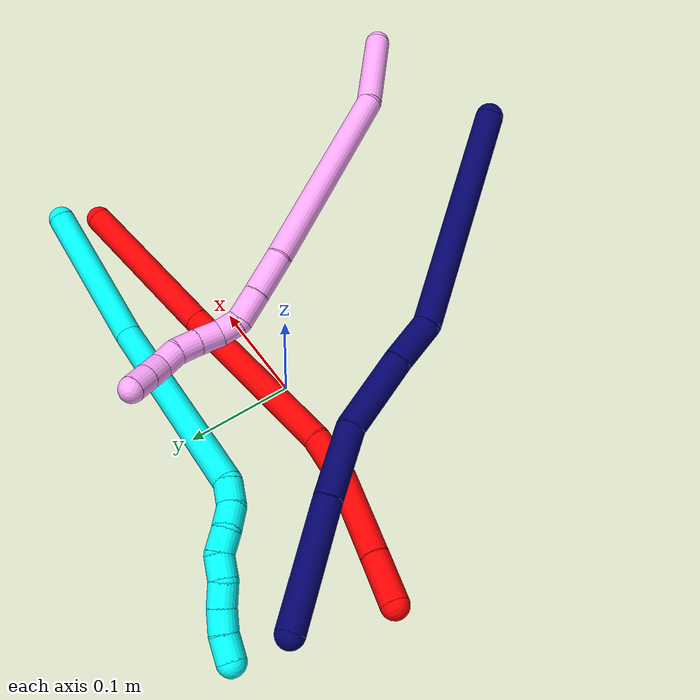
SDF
<sdf version="1.7">
 <world name="default">
  <model name="2">
   <static>0</static>
   <link name="2">
    <collision name="collision-cylinder-e_1_1_4">
     <pose>-0.073983 0.004055 0.030953 -0.130257 -1.17151 0.086484</pose>
     <geometry><cylinder><radius>0.0125</radius><length>0.160598</length></cylinder></geometry>
     <surface>
      <friction><ode><mu>1.16</mu><mu2>1.16</mu2><slip1>0</slip1><slip2>0</slip2></ode></friction>
      <contact><ode><kp>1e+06</kp><kd>1</kd><max_vel>0</max_vel><min_depth>0.001</min_depth></ode></contact>
     </surface>
    </collision>
    <visual name="visual-cylinder-e_1_1_4">
     <pose>-0.073983 0.004055 0.030953 -0.130257 -1.17151 0.086484</pose>
     <geometry><cylinder><radius>0.0125</radius><length>0.160598</length></cylinder></geometry>
     <material><ambient>1 0 0 1</ambient></material>
    </visual>
    <collision name="collision-cylinder-e_2_4_5">
     <pose>-0.226274 0.018034 0.098708 -0.26341 -1.11781 0.165324</pose>
     <geometry><cylinder><radius>0.0125</radius><length>0.174186</length></cylinder></geometry>
     <surface>
      <friction><ode><mu>1.16</mu><mu2>1.16</mu2><slip1>0</slip1><slip2>0</slip2></ode></friction>
      <contact><ode><kp>1e+06</kp><kd>1</kd><max_vel>0</max_vel><min_depth>0.001</min_depth></ode></contact>
     </surface>
    </collision>
    <visual name="visual-cylinder-e_2_4_5">
     <pose>-0.226274 0.018034 0.098708 -0.26341 -1.11781 0.165324</pose>
     <geometry><cylinder><radius>0.0125</radius><length>0.174186</length></cylinder></geometry>
     <material><ambient>1 0 0 1</ambient></material>
    </visual>
    <collision name="collision-cylinder-e_3_5_6">
     <pose>-0.325542 0.031269 0.140704 -0.567394 -1.28497 0.42968</pose>
     <geometry><cylinder><radius>0.0125</radius><length>0.043692</length></cylinder></geometry>
     <surface>
      <friction><ode><mu>1.16</mu><mu2>1.16</mu2><slip1>0</slip1><slip2>0</slip2></ode></friction>
      <contact><ode><kp>1e+06</kp><kd>1</kd><max_vel>0</max_vel><min_depth>0.001</min_depth></ode></contact>
     </surface>
    </collision>
    <visual name="visual-cylinder-e_3_5_6">
     <pose>-0.325542 0.031269 0.140704 -0.567394 -1.28497 0.42968</pose>
     <geometry><cylinder><radius>0.0125</radius><length>0.043692</length></cylinder></geometry>
     <material><ambient>1 0 0 1</ambient></material>
    </visual>
    <collision name="collision-cylinder-e_4_6_7">
     <pose>-0.382851 0.047138 0.150398 -1.22678 -1.21905 0.913696</pose>
     <geometry><cylinder><radius>0.0125</radius><length>0.077439</length></cylinder></geometry>
     <surface>
      <friction><ode><mu>1.16</mu><mu2>1.16</mu2><slip1>0</slip1><slip2>0</slip2></ode></friction>
      <contact><ode><kp>1e+06</kp><kd>1</kd><max_vel>0</max_vel><min_depth>0.001</min_depth></ode></contact>
     </surface>
    </collision>
    <visual name="visual-cylinder-e_4_6_7">
     <pose>-0.382851 0.047138 0.150398 -1.22678 -1.21905 0.913696</pose>
     <geometry><cylinder><radius>0.0125</radius><length>0.077439</length></cylinder></geometry>
     <material><ambient>1 0 0 1</ambient></material>
    </visual>
    <collision name="collision-cylinder-e_5_7_2">
     <pose>-0.440227 0.065959 0.157019 -1.2441 -1.26614 0.968708</pose>
     <geometry><cylinder><radius>0.0125</radius><length>0.044085</length></cylinder></geometry>
     <surface>
      <friction><ode><mu>1.16</mu><mu2>1.16</mu2><slip1>0</slip1><slip2>0</slip2></ode></friction>
      <contact><ode><kp>1e+06</kp><kd>1</kd><max_vel>0</max_vel><min_depth>0.001</min_depth></ode></contact>
     </surface>
    </collision>
    <visual name="visual-cylinder-e_5_7_2">
     <pose>-0.440227 0.065959 0.157019 -1.2441 -1.26614 0.968708</pose>
     <geometry><cylinder><radius>0.0125</radius><length>0.044085</length></cylinder></geometry>
     <material><ambient>1 0 0 1</ambient></material>
    </visual>
    <collision name="collision-sphere-2">
     <pose>-0.461255 0.072221 0.159141 0 -0 0</pose>
     <geometry><sphere><radius>0.0125</radius></sphere></geometry>
     <surface>
      <friction><ode><mu>1.16</mu><mu2>1.16</mu2><slip1>0</slip1><slip2>0</slip2></ode></friction>
      <contact><ode><kp>1e+06</kp><kd>1</kd><max_vel>0</max_vel><min_depth>0.001</min_depth></ode></contact>
     </surface>
    </collision>
    <visual name="visual-sphere-2">
     <pose>-0.461255 0.072221 0.159141 0 -0 0</pose>
     <geometry><sphere><radius>0.0125</radius></sphere></geometry>
     <material><ambient>1 0 0 1</ambient></material>
    </visual>
    <collision name="collision-sphere-7">
     <pose>-0.4192 0.059697 0.154897 0 -0 0</pose>
     <geometry><sphere><radius>0.0125</radius></sphere></geometry>
     <surface>
      <friction><ode><mu>1.16</mu><mu2>1.16</mu2><slip1>0</slip1><slip2>0</slip2></ode></friction>
      <contact><ode><kp>1e+06</kp><kd>1</kd><max_vel>0</max_vel><min_depth>0.001</min_depth></ode></contact>
     </surface>
    </collision>
    <visual name="visual-sphere-7">
     <pose>-0.4192 0.059697 0.154897 0 -0 0</pose>
     <geometry><sphere><radius>0.0125</radius></sphere></geometry>
     <material><ambient>1 0 0 1</ambient></material>
    </visual>
    <collision name="collision-sphere-6">
     <pose>-0.346502 0.03458 0.145899 0 -0 0</pose>
     <geometry><sphere><radius>0.0125</radius></sphere></geometry>
     <surface>
      <friction><ode><mu>1.16</mu><mu2>1.16</mu2><slip1>0</slip1><slip2>0</slip2></ode></friction>
      <contact><ode><kp>1e+06</kp><kd>1</kd><max_vel>0</max_vel><min_depth>0.001</min_depth></ode></contact>
     </surface>
    </collision>
    <visual name="visual-sphere-6">
     <pose>-0.346502 0.03458 0.145899 0 -0 0</pose>
     <geometry><sphere><radius>0.0125</radius></sphere></geometry>
     <material><ambient>1 0 0 1</ambient></material>
    </visual>
    <collision name="collision-sphere-5">
     <pose>-0.304583 0.027959 0.13551 0 -0 0</pose>
     <geometry><sphere><radius>0.0125</radius></sphere></geometry>
     <surface>
      <friction><ode><mu>1.16</mu><mu2>1.16</mu2><slip1>0</slip1><slip2>0</slip2></ode></friction>
      <contact><ode><kp>1e+06</kp><kd>1</kd><max_vel>0</max_vel><min_depth>0.001</min_depth></ode></contact>
     </surface>
    </collision>
    <visual name="visual-sphere-5">
     <pose>-0.304583 0.027959 0.13551 0 -0 0</pose>
     <geometry><sphere><radius>0.0125</radius></sphere></geometry>
     <material><ambient>1 0 0 1</ambient></material>
    </visual>
    <collision name="collision-sphere-1">
     <geometry><sphere><radius>0.0125</radius></sphere></geometry>
     <surface>
      <friction><ode><mu>1.16</mu><mu2>1.16</mu2><slip1>0</slip1><slip2>0</slip2></ode></friction>
      <contact><ode><kp>1e+06</kp><kd>1</kd><max_vel>0</max_vel><min_depth>0.001</min_depth></ode></contact>
     </surface>
    </collision>
    <visual name="visual-sphere-1">
     <geometry><sphere><radius>0.0125</radius></sphere></geometry>
     <material><ambient>1 0 0 1</ambient></material>
    </visual>
    <collision name="collision-sphere-4">
     <pose>-0.147965 0.00811 0.061906 0 -0 0</pose>
     <geometry><sphere><radius>0.0125</radius></sphere></geometry>
     <surface>
      <friction><ode><mu>1.16</mu><mu2>1.16</mu2><slip1>0</slip1><slip2>0</slip2></ode></friction>
      <contact><ode><kp>1e+06</kp><kd>1</kd><max_vel>0</max_vel><min_depth>0.001</min_depth></ode></contact>
     </surface>
    </collision>
    <visual name="visual-sphere-4">
     <pose>-0.147965 0.00811 0.061906 0 -0 0</pose>
     <geometry><sphere><radius>0.0125</radius></sphere></geometry>
     <material><ambient>1 0 0 1</ambient></material>
    </visual>
    <inertial>
     <pose>-0.229148 0.023434 0.093762 0 -0 0</pose>
     <mass>0.5</mass>
     <inertia>
      <ixx>0.000364</ixx>
      <ixy>0</ixy>
      <ixz>0</ixz>
      <iyy>0.000913</iyy>
      <iyz>0</iyz>
      <izz>0.000708</izz>
     </inertia>
    </inertial>
   </link>
   <pose>0.264307 0.05307 0.020356 0.99081 -0.326242 -0.174027</pose>
  </model>
  <model name="3">
   <static>0</static>
   <link name="3">
    <collision name="collision-cylinder-e_1_1_4">
     <pose>-0.065872 0.022811 -0.021089 -2.31697 -1.13012 1.93382</pose>
     <geometry><cylinder><radius>0.0125</radius><length>0.14566</length></cylinder></geometry>
     <surface>
      <friction><ode><mu>1.16</mu><mu2>1.16</mu2><slip1>0</slip1><slip2>0</slip2></ode></friction>
      <contact><ode><kp>1e+06</kp><kd>1</kd><max_vel>0</max_vel><min_depth>0.001</min_depth></ode></contact>
     </surface>
    </collision>
    <visual name="visual-cylinder-e_1_1_4">
     <pose>-0.065872 0.022811 -0.021089 -2.31697 -1.13012 1.93382</pose>
     <geometry><cylinder><radius>0.0125</radius><length>0.14566</length></cylinder></geometry>
     <material><ambient>0.003922 1 0.996078 1</ambient></material>
    </visual>
    <collision name="collision-cylinder-e_2_4_5">
     <pose>-0.211705 0.063844 -0.105534 -2.86156 -0.881321 2.56077</pose>
     <geometry><cylinder><radius>0.0125</radius><length>0.207266</length></cylinder></geometry>
     <surface>
      <friction><ode><mu>1.16</mu><mu2>1.16</mu2><slip1>0</slip1><slip2>0</slip2></ode></friction>
      <contact><ode><kp>1e+06</kp><kd>1</kd><max_vel>0</max_vel><min_depth>0.001</min_depth></ode></contact>
     </surface>
    </collision>
    <visual name="visual-cylinder-e_2_4_5">
     <pose>-0.211705 0.063844 -0.105534 -2.86156 -0.881321 2.56077</pose>
     <geometry><cylinder><radius>0.0125</radius><length>0.207266</length></cylinder></geometry>
     <material><ambient>0.003922 1 0.996078 1</ambient></material>
    </visual>
    <collision name="collision-cylinder-e_3_5_6">
     <pose>-0.301978 0.081331 -0.172313 2.93065 -1.24353 -2.84823</pose>
     <geometry><cylinder><radius>0.0125</radius><length>0.02178</length></cylinder></geometry>
     <surface>
      <friction><ode><mu>1.16</mu><mu2>1.16</mu2><slip1>0</slip1><slip2>0</slip2></ode></friction>
      <contact><ode><kp>1e+06</kp><kd>1</kd><max_vel>0</max_vel><min_depth>0.001</min_depth></ode></contact>
     </surface>
    </collision>
    <visual name="visual-cylinder-e_3_5_6">
     <pose>-0.301978 0.081331 -0.172313 2.93065 -1.24353 -2.84823</pose>
     <geometry><cylinder><radius>0.0125</radius><length>0.02178</length></cylinder></geometry>
     <material><ambient>0.003922 1 0.996078 1</ambient></material>
    </visual>
    <collision name="collision-cylinder-e_4_6_7">
     <pose>-0.321855 0.076083 -0.178778 2.1637 -1.0533 -1.65945</pose>
     <geometry><cylinder><radius>0.0125</radius><length>0.022011</length></cylinder></geometry>
     <surface>
      <friction><ode><mu>1.16</mu><mu2>1.16</mu2><slip1>0</slip1><slip2>0</slip2></ode></friction>
      <contact><ode><kp>1e+06</kp><kd>1</kd><max_vel>0</max_vel><min_depth>0.001</min_depth></ode></contact>
     </surface>
    </collision>
    <visual name="visual-cylinder-e_4_6_7">
     <pose>-0.321855 0.076083 -0.178778 2.1637 -1.0533 -1.65945</pose>
     <geometry><cylinder><radius>0.0125</radius><length>0.022011</length></cylinder></geometry>
     <material><ambient>0.003922 1 0.996078 1</ambient></material>
    </visual>
    <collision name="collision-cylinder-e_5_7_8">
     <pose>-0.340673 0.067451 -0.181784 1.56202 -1.15224 -1.14423</pose>
     <geometry><cylinder><radius>0.0125</radius><length>0.020257</length></cylinder></geometry>
     <surface>
      <friction><ode><mu>1.16</mu><mu2>1.16</mu2><slip1>0</slip1><slip2>0</slip2></ode></friction>
      <contact><ode><kp>1e+06</kp><kd>1</kd><max_vel>0</max_vel><min_depth>0.001</min_depth></ode></contact>
     </surface>
    </collision>
    <visual name="visual-cylinder-e_5_7_8">
     <pose>-0.340673 0.067451 -0.181784 1.56202 -1.15224 -1.14423</pose>
     <geometry><cylinder><radius>0.0125</radius><length>0.020257</length></cylinder></geometry>
     <material><ambient>0.003922 1 0.996078 1</ambient></material>
    </visual>
    <collision name="collision-cylinder-e_6_8_9">
     <pose>-0.36011 0.063535 -0.183057 -2.99026 -1.44153 2.96941</pose>
     <geometry><cylinder><radius>0.0125</radius><length>0.020538</length></cylinder></geometry>
     <surface>
      <friction><ode><mu>1.16</mu><mu2>1.16</mu2><slip1>0</slip1><slip2>0</slip2></ode></friction>
      <contact><ode><kp>1e+06</kp><kd>1</kd><max_vel>0</max_vel><min_depth>0.001</min_depth></ode></contact>
     </surface>
    </collision>
    <visual name="visual-cylinder-e_6_8_9">
     <pose>-0.36011 0.063535 -0.183057 -2.99026 -1.44153 2.96941</pose>
     <geometry><cylinder><radius>0.0125</radius><length>0.020538</length></cylinder></geometry>
     <material><ambient>0.003922 1 0.996078 1</ambient></material>
    </visual>
    <collision name="collision-cylinder-e_7_9_10">
     <pose>-0.380418 0.062607 -0.182379 0.516367 -1.34896 -0.416183</pose>
     <geometry><cylinder><radius>0.0125</radius><length>0.020758</length></cylinder></geometry>
     <surface>
      <friction><ode><mu>1.16</mu><mu2>1.16</mu2><slip1>0</slip1><slip2>0</slip2></ode></friction>
      <contact><ode><kp>1e+06</kp><kd>1</kd><max_vel>0</max_vel><min_depth>0.001</min_depth></ode></contact>
     </surface>
    </collision>
    <visual name="visual-cylinder-e_7_9_10">
     <pose>-0.380418 0.062607 -0.182379 0.516367 -1.34896 -0.416183</pose>
     <geometry><cylinder><radius>0.0125</radius><length>0.020758</length></cylinder></geometry>
     <material><ambient>0.003922 1 0.996078 1</ambient></material>
    </visual>
    <collision name="collision-cylinder-e_8_10_11">
     <pose>-0.400627 0.061244 -0.18001 0.549982 -1.52619 -0.527102</pose>
     <geometry><cylinder><radius>0.0125</radius><length>0.020189</length></cylinder></geometry>
     <surface>
      <friction><ode><mu>1.16</mu><mu2>1.16</mu2><slip1>0</slip1><slip2>0</slip2></ode></friction>
      <contact><ode><kp>1e+06</kp><kd>1</kd><max_vel>0</max_vel><min_depth>0.001</min_depth></ode></contact>
     </surface>
    </collision>
    <visual name="visual-cylinder-e_8_10_11">
     <pose>-0.400627 0.061244 -0.18001 0.549982 -1.52619 -0.527102</pose>
     <geometry><cylinder><radius>0.0125</radius><length>0.020189</length></cylinder></geometry>
     <material><ambient>0.003922 1 0.996078 1</ambient></material>
    </visual>
    <collision name="collision-cylinder-e_9_11_2">
     <pose>-0.421316 0.062739 -0.180375 -1.97948 -1.39486 1.81213</pose>
     <geometry><cylinder><radius>0.0125</radius><length>0.021541</length></cylinder></geometry>
     <surface>
      <friction><ode><mu>1.16</mu><mu2>1.16</mu2><slip1>0</slip1><slip2>0</slip2></ode></friction>
      <contact><ode><kp>1e+06</kp><kd>1</kd><max_vel>0</max_vel><min_depth>0.001</min_depth></ode></contact>
     </surface>
    </collision>
    <visual name="visual-cylinder-e_9_11_2">
     <pose>-0.421316 0.062739 -0.180375 -1.97948 -1.39486 1.81213</pose>
     <geometry><cylinder><radius>0.0125</radius><length>0.021541</length></cylinder></geometry>
     <material><ambient>0.003922 1 0.996078 1</ambient></material>
    </visual>
    <collision name="collision-sphere-2">
     <pose>-0.431921 0.064468 -0.181124 0 -0 0</pose>
     <geometry><sphere><radius>0.0125</radius></sphere></geometry>
     <surface>
      <friction><ode><mu>1.16</mu><mu2>1.16</mu2><slip1>0</slip1><slip2>0</slip2></ode></friction>
      <contact><ode><kp>1e+06</kp><kd>1</kd><max_vel>0</max_vel><min_depth>0.001</min_depth></ode></contact>
     </surface>
    </collision>
    <visual name="visual-sphere-2">
     <pose>-0.431921 0.064468 -0.181124 0 -0 0</pose>
     <geometry><sphere><radius>0.0125</radius></sphere></geometry>
     <material><ambient>0.003922 1 0.996078 1</ambient></material>
    </visual>
    <collision name="collision-sphere-11">
     <pose>-0.410712 0.061009 -0.179626 0 -0 0</pose>
     <geometry><sphere><radius>0.0125</radius></sphere></geometry>
     <surface>
      <friction><ode><mu>1.16</mu><mu2>1.16</mu2><slip1>0</slip1><slip2>0</slip2></ode></friction>
      <contact><ode><kp>1e+06</kp><kd>1</kd><max_vel>0</max_vel><min_depth>0.001</min_depth></ode></contact>
     </surface>
    </collision>
    <visual name="visual-sphere-11">
     <pose>-0.410712 0.061009 -0.179626 0 -0 0</pose>
     <geometry><sphere><radius>0.0125</radius></sphere></geometry>
     <material><ambient>0.003922 1 0.996078 1</ambient></material>
    </visual>
    <collision name="collision-sphere-10">
     <pose>-0.390543 0.061479 -0.180394 0 -0 0</pose>
     <geometry><sphere><radius>0.0125</radius></sphere></geometry>
     <surface>
      <friction><ode><mu>1.16</mu><mu2>1.16</mu2><slip1>0</slip1><slip2>0</slip2></ode></friction>
      <contact><ode><kp>1e+06</kp><kd>1</kd><max_vel>0</max_vel><min_depth>0.001</min_depth></ode></contact>
     </surface>
    </collision>
    <visual name="visual-sphere-10">
     <pose>-0.390543 0.061479 -0.180394 0 -0 0</pose>
     <geometry><sphere><radius>0.0125</radius></sphere></geometry>
     <material><ambient>0.003922 1 0.996078 1</ambient></material>
    </visual>
    <collision name="collision-sphere-9">
     <pose>-0.370294 0.063734 -0.184365 0 -0 0</pose>
     <geometry><sphere><radius>0.0125</radius></sphere></geometry>
     <surface>
      <friction><ode><mu>1.16</mu><mu2>1.16</mu2><slip1>0</slip1><slip2>0</slip2></ode></friction>
      <contact><ode><kp>1e+06</kp><kd>1</kd><max_vel>0</max_vel><min_depth>0.001</min_depth></ode></contact>
     </surface>
    </collision>
    <visual name="visual-sphere-9">
     <pose>-0.370294 0.063734 -0.184365 0 -0 0</pose>
     <geometry><sphere><radius>0.0125</radius></sphere></geometry>
     <material><ambient>0.003922 1 0.996078 1</ambient></material>
    </visual>
    <collision name="collision-sphere-4">
     <pose>-0.131744 0.045623 -0.042177 0 -0 0</pose>
     <geometry><sphere><radius>0.0125</radius></sphere></geometry>
     <surface>
      <friction><ode><mu>1.16</mu><mu2>1.16</mu2><slip1>0</slip1><slip2>0</slip2></ode></friction>
      <contact><ode><kp>1e+06</kp><kd>1</kd><max_vel>0</max_vel><min_depth>0.001</min_depth></ode></contact>
     </surface>
    </collision>
    <visual name="visual-sphere-4">
     <pose>-0.131744 0.045623 -0.042177 0 -0 0</pose>
     <geometry><sphere><radius>0.0125</radius></sphere></geometry>
     <material><ambient>0.003922 1 0.996078 1</ambient></material>
    </visual>
    <collision name="collision-sphere-1">
     <geometry><sphere><radius>0.0125</radius></sphere></geometry>
     <surface>
      <friction><ode><mu>1.16</mu><mu2>1.16</mu2><slip1>0</slip1><slip2>0</slip2></ode></friction>
      <contact><ode><kp>1e+06</kp><kd>1</kd><max_vel>0</max_vel><min_depth>0.001</min_depth></ode></contact>
     </surface>
    </collision>
    <visual name="visual-sphere-1">
     <geometry><sphere><radius>0.0125</radius></sphere></geometry>
     <material><ambient>0.003922 1 0.996078 1</ambient></material>
    </visual>
    <collision name="collision-sphere-8">
     <pose>-0.349927 0.063335 -0.181748 0 -0 0</pose>
     <geometry><sphere><radius>0.0125</radius></sphere></geometry>
     <surface>
      <friction><ode><mu>1.16</mu><mu2>1.16</mu2><slip1>0</slip1><slip2>0</slip2></ode></friction>
      <contact><ode><kp>1e+06</kp><kd>1</kd><max_vel>0</max_vel><min_depth>0.001</min_depth></ode></contact>
     </surface>
    </collision>
    <visual name="visual-sphere-8">
     <pose>-0.349927 0.063335 -0.181748 0 -0 0</pose>
     <geometry><sphere><radius>0.0125</radius></sphere></geometry>
     <material><ambient>0.003922 1 0.996078 1</ambient></material>
    </visual>
    <collision name="collision-sphere-5">
     <pose>-0.291666 0.082064 -0.16889 0 -0 0</pose>
     <geometry><sphere><radius>0.0125</radius></sphere></geometry>
     <surface>
      <friction><ode><mu>1.16</mu><mu2>1.16</mu2><slip1>0</slip1><slip2>0</slip2></ode></friction>
      <contact><ode><kp>1e+06</kp><kd>1</kd><max_vel>0</max_vel><min_depth>0.001</min_depth></ode></contact>
     </surface>
    </collision>
    <visual name="visual-sphere-5">
     <pose>-0.291666 0.082064 -0.16889 0 -0 0</pose>
     <geometry><sphere><radius>0.0125</radius></sphere></geometry>
     <material><ambient>0.003922 1 0.996078 1</ambient></material>
    </visual>
    <collision name="collision-sphere-6">
     <pose>-0.312291 0.080598 -0.175736 0 -0 0</pose>
     <geometry><sphere><radius>0.0125</radius></sphere></geometry>
     <surface>
      <friction><ode><mu>1.16</mu><mu2>1.16</mu2><slip1>0</slip1><slip2>0</slip2></ode></friction>
      <contact><ode><kp>1e+06</kp><kd>1</kd><max_vel>0</max_vel><min_depth>0.001</min_depth></ode></contact>
     </surface>
    </collision>
    <visual name="visual-sphere-6">
     <pose>-0.312291 0.080598 -0.175736 0 -0 0</pose>
     <geometry><sphere><radius>0.0125</radius></sphere></geometry>
     <material><ambient>0.003922 1 0.996078 1</ambient></material>
    </visual>
    <collision name="collision-sphere-7">
     <pose>-0.331419 0.071568 -0.181821 0 -0 0</pose>
     <geometry><sphere><radius>0.0125</radius></sphere></geometry>
     <surface>
      <friction><ode><mu>1.16</mu><mu2>1.16</mu2><slip1>0</slip1><slip2>0</slip2></ode></friction>
      <contact><ode><kp>1e+06</kp><kd>1</kd><max_vel>0</max_vel><min_depth>0.001</min_depth></ode></contact>
     </surface>
    </collision>
    <visual name="visual-sphere-7">
     <pose>-0.331419 0.071568 -0.181821 0 -0 0</pose>
     <geometry><sphere><radius>0.0125</radius></sphere></geometry>
     <material><ambient>0.003922 1 0.996078 1</ambient></material>
    </visual>
    <inertial>
     <pose>-0.212986 0.05312 -0.102762 0 -0 0</pose>
     <mass>0.5</mass>
     <inertia>
      <ixx>-0.000107</ixx>
      <ixy>0</ixy>
      <ixz>0</ixz>
      <iyy>0.001298</iyy>
      <iyz>0</iyz>
      <izz>0.0006</izz>
     </inertia>
    </inertial>
   </link>
   <pose>0.267769 0.09005 0.039532 -2.79576 -0.39269 -0.449052</pose>
  </model>
  <model name="4">
   <static>0</static>
   <link name="4">
    <collision name="collision-cylinder-e_1_1_4">
     <pose>0.003246 0.00597 -0.046556 -3.01405 0.069043 -0.991526</pose>
     <geometry><cylinder><radius>0.0125</radius><length>0.094099</length></cylinder></geometry>
     <surface>
      <friction><ode><mu>1.16</mu><mu2>1.16</mu2><slip1>0</slip1><slip2>0</slip2></ode></friction>
      <contact><ode><kp>1e+06</kp><kd>1</kd><max_vel>0</max_vel><min_depth>0.001</min_depth></ode></contact>
     </surface>
    </collision>
    <visual name="visual-cylinder-e_1_1_4">
     <pose>0.003246 0.00597 -0.046556 -3.01405 0.069043 -0.991526</pose>
     <geometry><cylinder><radius>0.0125</radius><length>0.094099</length></cylinder></geometry>
     <material><ambient>1 0.65098 0.996078 1</ambient></material>
    </visual>
    <collision name="collision-cylinder-e_2_4_5">
     <pose>0.005171 0.057965 -0.184393 -2.67458 -0.012921 0.054313</pose>
     <geometry><cylinder><radius>0.0125</radius><length>0.20447</length></cylinder></geometry>
     <surface>
      <friction><ode><mu>1.16</mu><mu2>1.16</mu2><slip1>0</slip1><slip2>0</slip2></ode></friction>
      <contact><ode><kp>1e+06</kp><kd>1</kd><max_vel>0</max_vel><min_depth>0.001</min_depth></ode></contact>
     </surface>
    </collision>
    <visual name="visual-cylinder-e_2_4_5">
     <pose>0.005171 0.057965 -0.184393 -2.67458 -0.012921 0.054313</pose>
     <geometry><cylinder><radius>0.0125</radius><length>0.20447</length></cylinder></geometry>
     <material><ambient>1 0.65098 0.996078 1</ambient></material>
    </visual>
    <collision name="collision-cylinder-e_3_5_6">
     <pose>0.004865 0.115734 -0.293484 -2.55861 0.047566 -0.158233</pose>
     <geometry><cylinder><radius>0.0125</radius><length>0.042718</length></cylinder></geometry>
     <surface>
      <friction><ode><mu>1.16</mu><mu2>1.16</mu2><slip1>0</slip1><slip2>0</slip2></ode></friction>
      <contact><ode><kp>1e+06</kp><kd>1</kd><max_vel>0</max_vel><min_depth>0.001</min_depth></ode></contact>
     </surface>
    </collision>
    <visual name="visual-cylinder-e_3_5_6">
     <pose>0.004865 0.115734 -0.293484 -2.55861 0.047566 -0.158233</pose>
     <geometry><cylinder><radius>0.0125</radius><length>0.042718</length></cylinder></geometry>
     <material><ambient>1 0.65098 0.996078 1</ambient></material>
    </visual>
    <collision name="collision-cylinder-e_4_6_7">
     <pose>0.006755 0.136373 -0.32398 -2.53016 0.056382 -0.178219</pose>
     <geometry><cylinder><radius>0.0125</radius><length>0.031034</length></cylinder></geometry>
     <surface>
      <friction><ode><mu>1.16</mu><mu2>1.16</mu2><slip1>0</slip1><slip2>0</slip2></ode></friction>
      <contact><ode><kp>1e+06</kp><kd>1</kd><max_vel>0</max_vel><min_depth>0.001</min_depth></ode></contact>
     </surface>
    </collision>
    <visual name="visual-cylinder-e_4_6_7">
     <pose>0.006755 0.136373 -0.32398 -2.53016 0.056382 -0.178219</pose>
     <geometry><cylinder><radius>0.0125</radius><length>0.031034</length></cylinder></geometry>
     <material><ambient>1 0.65098 0.996078 1</ambient></material>
    </visual>
    <collision name="collision-cylinder-e_5_7_8">
     <pose>0.005393 0.154077 -0.341692 -2.08914 -0.217033 0.370806</pose>
     <geometry><cylinder><radius>0.0125</radius><length>0.020774</length></cylinder></geometry>
     <surface>
      <friction><ode><mu>1.16</mu><mu2>1.16</mu2><slip1>0</slip1><slip2>0</slip2></ode></friction>
      <contact><ode><kp>1e+06</kp><kd>1</kd><max_vel>0</max_vel><min_depth>0.001</min_depth></ode></contact>
     </surface>
    </collision>
    <visual name="visual-cylinder-e_5_7_8">
     <pose>0.005393 0.154077 -0.341692 -2.08914 -0.217033 0.370806</pose>
     <geometry><cylinder><radius>0.0125</radius><length>0.020774</length></cylinder></geometry>
     <material><ambient>1 0.65098 0.996078 1</ambient></material>
    </visual>
    <collision name="collision-cylinder-e_6_8_9">
     <pose>-0.00271 0.170329 -0.35369 -2.32373 -0.522028 1.10473</pose>
     <geometry><cylinder><radius>0.0125</radius><length>0.023529</length></cylinder></geometry>
     <surface>
      <friction><ode><mu>1.16</mu><mu2>1.16</mu2><slip1>0</slip1><slip2>0</slip2></ode></friction>
      <contact><ode><kp>1e+06</kp><kd>1</kd><max_vel>0</max_vel><min_depth>0.001</min_depth></ode></contact>
     </surface>
    </collision>
    <visual name="visual-cylinder-e_6_8_9">
     <pose>-0.00271 0.170329 -0.35369 -2.32373 -0.522028 1.10473</pose>
     <geometry><cylinder><radius>0.0125</radius><length>0.023529</length></cylinder></geometry>
     <material><ambient>1 0.65098 0.996078 1</ambient></material>
    </visual>
    <collision name="collision-cylinder-e_7_9_10">
     <pose>-0.013954 0.184129 -0.367864 -2.41822 -0.510282 1.20717</pose>
     <geometry><cylinder><radius>0.0125</radius><length>0.022019</length></cylinder></geometry>
     <surface>
      <friction><ode><mu>1.16</mu><mu2>1.16</mu2><slip1>0</slip1><slip2>0</slip2></ode></friction>
      <contact><ode><kp>1e+06</kp><kd>1</kd><max_vel>0</max_vel><min_depth>0.001</min_depth></ode></contact>
     </surface>
    </collision>
    <visual name="visual-cylinder-e_7_9_10">
     <pose>-0.013954 0.184129 -0.367864 -2.41822 -0.510282 1.20717</pose>
     <geometry><cylinder><radius>0.0125</radius><length>0.022019</length></cylinder></geometry>
     <material><ambient>1 0.65098 0.996078 1</ambient></material>
    </visual>
    <collision name="collision-cylinder-e_8_10_11">
     <pose>-0.021958 0.195892 -0.383297 -2.56067 -0.260686 0.826562</pose>
     <geometry><cylinder><radius>0.0125</radius><length>0.020383</length></cylinder></geometry>
     <surface>
      <friction><ode><mu>1.16</mu><mu2>1.16</mu2><slip1>0</slip1><slip2>0</slip2></ode></friction>
      <contact><ode><kp>1e+06</kp><kd>1</kd><max_vel>0</max_vel><min_depth>0.001</min_depth></ode></contact>
     </surface>
    </collision>
    <visual name="visual-cylinder-e_8_10_11">
     <pose>-0.021958 0.195892 -0.383297 -2.56067 -0.260686 0.826562</pose>
     <geometry><cylinder><radius>0.0125</radius><length>0.020383</length></cylinder></geometry>
     <material><ambient>1 0.65098 0.996078 1</ambient></material>
    </visual>
    <collision name="collision-cylinder-e_9_11_12">
     <pose>-0.028847 0.203879 -0.400288 -2.85488 -0.436687 1.98806</pose>
     <geometry><cylinder><radius>0.0125</radius><length>0.020156</length></cylinder></geometry>
     <surface>
      <friction><ode><mu>1.16</mu><mu2>1.16</mu2><slip1>0</slip1><slip2>0</slip2></ode></friction>
      <contact><ode><kp>1e+06</kp><kd>1</kd><max_vel>0</max_vel><min_depth>0.001</min_depth></ode></contact>
     </surface>
    </collision>
    <visual name="visual-cylinder-e_9_11_12">
     <pose>-0.028847 0.203879 -0.400288 -2.85488 -0.436687 1.98806</pose>
     <geometry><cylinder><radius>0.0125</radius><length>0.020156</length></cylinder></geometry>
     <material><ambient>1 0.65098 0.996078 1</ambient></material>
    </visual>
    <collision name="collision-cylinder-e_10_12_2">
     <pose>-0.037523 0.209146 -0.418083 -2.85278 -0.437906 1.98393</pose>
     <geometry><cylinder><radius>0.0125</radius><length>0.020817</length></cylinder></geometry>
     <surface>
      <friction><ode><mu>1.16</mu><mu2>1.16</mu2><slip1>0</slip1><slip2>0</slip2></ode></friction>
      <contact><ode><kp>1e+06</kp><kd>1</kd><max_vel>0</max_vel><min_depth>0.001</min_depth></ode></contact>
     </surface>
    </collision>
    <visual name="visual-cylinder-e_10_12_2">
     <pose>-0.037523 0.209146 -0.418083 -2.85278 -0.437906 1.98393</pose>
     <geometry><cylinder><radius>0.0125</radius><length>0.020817</length></cylinder></geometry>
     <material><ambient>1 0.65098 0.996078 1</ambient></material>
    </visual>
    <collision name="collision-sphere-2">
     <pose>-0.041936 0.211831 -0.427119 0 -0 0</pose>
     <geometry><sphere><radius>0.0125</radius></sphere></geometry>
     <surface>
      <friction><ode><mu>1.16</mu><mu2>1.16</mu2><slip1>0</slip1><slip2>0</slip2></ode></friction>
      <contact><ode><kp>1e+06</kp><kd>1</kd><max_vel>0</max_vel><min_depth>0.001</min_depth></ode></contact>
     </surface>
    </collision>
    <visual name="visual-sphere-2">
     <pose>-0.041936 0.211831 -0.427119 0 -0 0</pose>
     <geometry><sphere><radius>0.0125</radius></sphere></geometry>
     <material><ambient>1 0.65098 0.996078 1</ambient></material>
    </visual>
    <collision name="collision-sphere-12">
     <pose>-0.033109 0.206461 -0.409048 0 -0 0</pose>
     <geometry><sphere><radius>0.0125</radius></sphere></geometry>
     <surface>
      <friction><ode><mu>1.16</mu><mu2>1.16</mu2><slip1>0</slip1><slip2>0</slip2></ode></friction>
      <contact><ode><kp>1e+06</kp><kd>1</kd><max_vel>0</max_vel><min_depth>0.001</min_depth></ode></contact>
     </surface>
    </collision>
    <visual name="visual-sphere-12">
     <pose>-0.033109 0.206461 -0.409048 0 -0 0</pose>
     <geometry><sphere><radius>0.0125</radius></sphere></geometry>
     <material><ambient>1 0.65098 0.996078 1</ambient></material>
    </visual>
    <collision name="collision-sphere-11">
     <pose>-0.024584 0.201296 -0.391529 0 -0 0</pose>
     <geometry><sphere><radius>0.0125</radius></sphere></geometry>
     <surface>
      <friction><ode><mu>1.16</mu><mu2>1.16</mu2><slip1>0</slip1><slip2>0</slip2></ode></friction>
      <contact><ode><kp>1e+06</kp><kd>1</kd><max_vel>0</max_vel><min_depth>0.001</min_depth></ode></contact>
     </surface>
    </collision>
    <visual name="visual-sphere-11">
     <pose>-0.024584 0.201296 -0.391529 0 -0 0</pose>
     <geometry><sphere><radius>0.0125</radius></sphere></geometry>
     <material><ambient>1 0.65098 0.996078 1</ambient></material>
    </visual>
    <collision name="collision-sphere-10">
     <pose>-0.019331 0.190488 -0.375066 0 -0 0</pose>
     <geometry><sphere><radius>0.0125</radius></sphere></geometry>
     <surface>
      <friction><ode><mu>1.16</mu><mu2>1.16</mu2><slip1>0</slip1><slip2>0</slip2></ode></friction>
      <contact><ode><kp>1e+06</kp><kd>1</kd><max_vel>0</max_vel><min_depth>0.001</min_depth></ode></contact>
     </surface>
    </collision>
    <visual name="visual-sphere-10">
     <pose>-0.019331 0.190488 -0.375066 0 -0 0</pose>
     <geometry><sphere><radius>0.0125</radius></sphere></geometry>
     <material><ambient>1 0.65098 0.996078 1</ambient></material>
    </visual>
    <collision name="collision-sphere-9">
     <pose>-0.008576 0.17777 -0.360663 0 -0 0</pose>
     <geometry><sphere><radius>0.0125</radius></sphere></geometry>
     <surface>
      <friction><ode><mu>1.16</mu><mu2>1.16</mu2><slip1>0</slip1><slip2>0</slip2></ode></friction>
      <contact><ode><kp>1e+06</kp><kd>1</kd><max_vel>0</max_vel><min_depth>0.001</min_depth></ode></contact>
     </surface>
    </collision>
    <visual name="visual-sphere-9">
     <pose>-0.008576 0.17777 -0.360663 0 -0 0</pose>
     <geometry><sphere><radius>0.0125</radius></sphere></geometry>
     <material><ambient>1 0.65098 0.996078 1</ambient></material>
    </visual>
    <collision name="collision-sphere-4">
     <pose>0.006492 0.011941 -0.093112 0 -0 0</pose>
     <geometry><sphere><radius>0.0125</radius></sphere></geometry>
     <surface>
      <friction><ode><mu>1.16</mu><mu2>1.16</mu2><slip1>0</slip1><slip2>0</slip2></ode></friction>
      <contact><ode><kp>1e+06</kp><kd>1</kd><max_vel>0</max_vel><min_depth>0.001</min_depth></ode></contact>
     </surface>
    </collision>
    <visual name="visual-sphere-4">
     <pose>0.006492 0.011941 -0.093112 0 -0 0</pose>
     <geometry><sphere><radius>0.0125</radius></sphere></geometry>
     <material><ambient>1 0.65098 0.996078 1</ambient></material>
    </visual>
    <collision name="collision-sphere-1">
     <geometry><sphere><radius>0.0125</radius></sphere></geometry>
     <surface>
      <friction><ode><mu>1.16</mu><mu2>1.16</mu2><slip1>0</slip1><slip2>0</slip2></ode></friction>
      <contact><ode><kp>1e+06</kp><kd>1</kd><max_vel>0</max_vel><min_depth>0.001</min_depth></ode></contact>
     </surface>
    </collision>
    <visual name="visual-sphere-1">
     <geometry><sphere><radius>0.0125</radius></sphere></geometry>
     <material><ambient>1 0.65098 0.996078 1</ambient></material>
    </visual>
    <collision name="collision-sphere-8">
     <pose>0.003157 0.162888 -0.346717 0 -0 0</pose>
     <geometry><sphere><radius>0.0125</radius></sphere></geometry>
     <surface>
      <friction><ode><mu>1.16</mu><mu2>1.16</mu2><slip1>0</slip1><slip2>0</slip2></ode></friction>
      <contact><ode><kp>1e+06</kp><kd>1</kd><max_vel>0</max_vel><min_depth>0.001</min_depth></ode></contact>
     </surface>
    </collision>
    <visual name="visual-sphere-8">
     <pose>0.003157 0.162888 -0.346717 0 -0 0</pose>
     <geometry><sphere><radius>0.0125</radius></sphere></geometry>
     <material><ambient>1 0.65098 0.996078 1</ambient></material>
    </visual>
    <collision name="collision-sphere-5">
     <pose>0.00385 0.103989 -0.275673 0 -0 0</pose>
     <geometry><sphere><radius>0.0125</radius></sphere></geometry>
     <surface>
      <friction><ode><mu>1.16</mu><mu2>1.16</mu2><slip1>0</slip1><slip2>0</slip2></ode></friction>
      <contact><ode><kp>1e+06</kp><kd>1</kd><max_vel>0</max_vel><min_depth>0.001</min_depth></ode></contact>
     </surface>
    </collision>
    <visual name="visual-sphere-5">
     <pose>0.00385 0.103989 -0.275673 0 -0 0</pose>
     <geometry><sphere><radius>0.0125</radius></sphere></geometry>
     <material><ambient>1 0.65098 0.996078 1</ambient></material>
    </visual>
    <collision name="collision-sphere-6">
     <pose>0.005881 0.127479 -0.311295 0 -0 0</pose>
     <geometry><sphere><radius>0.0125</radius></sphere></geometry>
     <surface>
      <friction><ode><mu>1.16</mu><mu2>1.16</mu2><slip1>0</slip1><slip2>0</slip2></ode></friction>
      <contact><ode><kp>1e+06</kp><kd>1</kd><max_vel>0</max_vel><min_depth>0.001</min_depth></ode></contact>
     </surface>
    </collision>
    <visual name="visual-sphere-6">
     <pose>0.005881 0.127479 -0.311295 0 -0 0</pose>
     <geometry><sphere><radius>0.0125</radius></sphere></geometry>
     <material><ambient>1 0.65098 0.996078 1</ambient></material>
    </visual>
    <collision name="collision-sphere-7">
     <pose>0.00763 0.145266 -0.336666 0 -0 0</pose>
     <geometry><sphere><radius>0.0125</radius></sphere></geometry>
     <surface>
      <friction><ode><mu>1.16</mu><mu2>1.16</mu2><slip1>0</slip1><slip2>0</slip2></ode></friction>
      <contact><ode><kp>1e+06</kp><kd>1</kd><max_vel>0</max_vel><min_depth>0.001</min_depth></ode></contact>
     </surface>
    </collision>
    <visual name="visual-sphere-7">
     <pose>0.00763 0.145266 -0.336666 0 -0 0</pose>
     <geometry><sphere><radius>0.0125</radius></sphere></geometry>
     <material><ambient>1 0.65098 0.996078 1</ambient></material>
    </visual>
    <inertial>
     <pose>-0.000578 0.090618 -0.22556 0 -0 0</pose>
     <mass>0.5</mass>
     <inertia>
      <ixx>0.000753</ixx>
      <ixy>0</ixy>
      <ixz>0</ixz>
      <iyy>-0.000691</iyy>
      <iyz>0</iyz>
      <izz>-0.000371</izz>
     </inertia>
    </inertial>
   </link>
   <pose>0.263844 -0.288502 0.089639 -1.80536 0.951323 -2.41415</pose>
  </model>
  <model name="7">
   <static>0</static>
   <link name="7">
    <collision name="collision-cylinder-e_1_1_4">
     <pose>-0.018963 0.027333 -0.100602 -2.8763 -0.17993 1.18898</pose>
     <geometry><cylinder><radius>0.0125</radius><length>0.211919</length></cylinder></geometry>
     <surface>
      <friction><ode><mu>1.16</mu><mu2>1.16</mu2><slip1>0</slip1><slip2>0</slip2></ode></friction>
      <contact><ode><kp>1e+06</kp><kd>1</kd><max_vel>0</max_vel><min_depth>0.001</min_depth></ode></contact>
     </surface>
    </collision>
    <visual name="visual-cylinder-e_1_1_4">
     <pose>-0.018963 0.027333 -0.100602 -2.8763 -0.17993 1.18898</pose>
     <geometry><cylinder><radius>0.0125</radius><length>0.211919</length></cylinder></geometry>
     <material><ambient>0.003922 0 0.403922 1</ambient></material>
    </visual>
    <collision name="collision-cylinder-e_2_4_5">
     <pose>-0.035652 0.055597 -0.222386 -3.09769 0.106785 -2.362</pose>
     <geometry><cylinder><radius>0.0125</radius><length>0.042649</length></cylinder></geometry>
     <surface>
      <friction><ode><mu>1.16</mu><mu2>1.16</mu2><slip1>0</slip1><slip2>0</slip2></ode></friction>
      <contact><ode><kp>1e+06</kp><kd>1</kd><max_vel>0</max_vel><min_depth>0.001</min_depth></ode></contact>
     </surface>
    </collision>
    <visual name="visual-cylinder-e_2_4_5">
     <pose>-0.035652 0.055597 -0.222386 -3.09769 0.106785 -2.362</pose>
     <geometry><cylinder><radius>0.0125</radius><length>0.042649</length></cylinder></geometry>
     <material><ambient>0.003922 0 0.403922 1</ambient></material>
    </visual>
    <collision name="collision-cylinder-e_3_5_6">
     <pose>-0.031469 0.059101 -0.279172 -3.06943 0.053467 -1.27511</pose>
     <geometry><cylinder><radius>0.0125</radius><length>0.071495</length></cylinder></geometry>
     <surface>
      <friction><ode><mu>1.16</mu><mu2>1.16</mu2><slip1>0</slip1><slip2>0</slip2></ode></friction>
      <contact><ode><kp>1e+06</kp><kd>1</kd><max_vel>0</max_vel><min_depth>0.001</min_depth></ode></contact>
     </surface>
    </collision>
    <visual name="visual-cylinder-e_3_5_6">
     <pose>-0.031469 0.059101 -0.279172 -3.06943 0.053467 -1.27511</pose>
     <geometry><cylinder><radius>0.0125</radius><length>0.071495</length></cylinder></geometry>
     <material><ambient>0.003922 0 0.403922 1</ambient></material>
    </visual>
    <collision name="collision-cylinder-e_4_6_7">
     <pose>-0.031721 0.072943 -0.344938 -2.78408 -0.067058 0.367087</pose>
     <geometry><cylinder><radius>0.0125</radius><length>0.064541</length></cylinder></geometry>
     <surface>
      <friction><ode><mu>1.16</mu><mu2>1.16</mu2><slip1>0</slip1><slip2>0</slip2></ode></friction>
      <contact><ode><kp>1e+06</kp><kd>1</kd><max_vel>0</max_vel><min_depth>0.001</min_depth></ode></contact>
     </surface>
    </collision>
    <visual name="visual-cylinder-e_4_6_7">
     <pose>-0.031721 0.072943 -0.344938 -2.78408 -0.067058 0.367087</pose>
     <geometry><cylinder><radius>0.0125</radius><length>0.064541</length></cylinder></geometry>
     <material><ambient>0.003922 0 0.403922 1</ambient></material>
    </visual>
    <collision name="collision-cylinder-e_5_7_2">
     <pose>-0.041352 0.102377 -0.42615 -2.79971 -0.136963 0.756393</pose>
     <geometry><cylinder><radius>0.0125</radius><length>0.109396</length></cylinder></geometry>
     <surface>
      <friction><ode><mu>1.16</mu><mu2>1.16</mu2><slip1>0</slip1><slip2>0</slip2></ode></friction>
      <contact><ode><kp>1e+06</kp><kd>1</kd><max_vel>0</max_vel><min_depth>0.001</min_depth></ode></contact>
     </surface>
    </collision>
    <visual name="visual-cylinder-e_5_7_2">
     <pose>-0.041352 0.102377 -0.42615 -2.79971 -0.136963 0.756393</pose>
     <geometry><cylinder><radius>0.0125</radius><length>0.109396</length></cylinder></geometry>
     <material><ambient>0.003922 0 0.403922 1</ambient></material>
    </visual>
    <collision name="collision-sphere-2">
     <pose>-0.04882 0.120543 -0.477199 0 -0 0</pose>
     <geometry><sphere><radius>0.0125</radius></sphere></geometry>
     <surface>
      <friction><ode><mu>1.16</mu><mu2>1.16</mu2><slip1>0</slip1><slip2>0</slip2></ode></friction>
      <contact><ode><kp>1e+06</kp><kd>1</kd><max_vel>0</max_vel><min_depth>0.001</min_depth></ode></contact>
     </surface>
    </collision>
    <visual name="visual-sphere-2">
     <pose>-0.04882 0.120543 -0.477199 0 -0 0</pose>
     <geometry><sphere><radius>0.0125</radius></sphere></geometry>
     <material><ambient>0.003922 0 0.403922 1</ambient></material>
    </visual>
    <collision name="collision-sphere-7">
     <pose>-0.033884 0.08421 -0.3751 0 -0 0</pose>
     <geometry><sphere><radius>0.0125</radius></sphere></geometry>
     <surface>
      <friction><ode><mu>1.16</mu><mu2>1.16</mu2><slip1>0</slip1><slip2>0</slip2></ode></friction>
      <contact><ode><kp>1e+06</kp><kd>1</kd><max_vel>0</max_vel><min_depth>0.001</min_depth></ode></contact>
     </surface>
    </collision>
    <visual name="visual-sphere-7">
     <pose>-0.033884 0.08421 -0.3751 0 -0 0</pose>
     <geometry><sphere><radius>0.0125</radius></sphere></geometry>
     <material><ambient>0.003922 0 0.403922 1</ambient></material>
    </visual>
    <collision name="collision-sphere-6">
     <pose>-0.029559 0.061675 -0.314775 0 -0 0</pose>
     <geometry><sphere><radius>0.0125</radius></sphere></geometry>
     <surface>
      <friction><ode><mu>1.16</mu><mu2>1.16</mu2><slip1>0</slip1><slip2>0</slip2></ode></friction>
      <contact><ode><kp>1e+06</kp><kd>1</kd><max_vel>0</max_vel><min_depth>0.001</min_depth></ode></contact>
     </surface>
    </collision>
    <visual name="visual-sphere-6">
     <pose>-0.029559 0.061675 -0.314775 0 -0 0</pose>
     <geometry><sphere><radius>0.0125</radius></sphere></geometry>
     <material><ambient>0.003922 0 0.403922 1</ambient></material>
    </visual>
    <collision name="collision-sphere-5">
     <pose>-0.03338 0.056527 -0.243569 0 -0 0</pose>
     <geometry><sphere><radius>0.0125</radius></sphere></geometry>
     <surface>
      <friction><ode><mu>1.16</mu><mu2>1.16</mu2><slip1>0</slip1><slip2>0</slip2></ode></friction>
      <contact><ode><kp>1e+06</kp><kd>1</kd><max_vel>0</max_vel><min_depth>0.001</min_depth></ode></contact>
     </surface>
    </collision>
    <visual name="visual-sphere-5">
     <pose>-0.03338 0.056527 -0.243569 0 -0 0</pose>
     <geometry><sphere><radius>0.0125</radius></sphere></geometry>
     <material><ambient>0.003922 0 0.403922 1</ambient></material>
    </visual>
    <collision name="collision-sphere-1">
     <geometry><sphere><radius>0.0125</radius></sphere></geometry>
     <surface>
      <friction><ode><mu>1.16</mu><mu2>1.16</mu2><slip1>0</slip1><slip2>0</slip2></ode></friction>
      <contact><ode><kp>1e+06</kp><kd>1</kd><max_vel>0</max_vel><min_depth>0.001</min_depth></ode></contact>
     </surface>
    </collision>
    <visual name="visual-sphere-1">
     <geometry><sphere><radius>0.0125</radius></sphere></geometry>
     <material><ambient>0.003922 0 0.403922 1</ambient></material>
    </visual>
    <collision name="collision-sphere-4">
     <pose>-0.037925 0.054666 -0.201204 0 -0 0</pose>
     <geometry><sphere><radius>0.0125</radius></sphere></geometry>
     <surface>
      <friction><ode><mu>1.16</mu><mu2>1.16</mu2><slip1>0</slip1><slip2>0</slip2></ode></friction>
      <contact><ode><kp>1e+06</kp><kd>1</kd><max_vel>0</max_vel><min_depth>0.001</min_depth></ode></contact>
     </surface>
    </collision>
    <visual name="visual-sphere-4">
     <pose>-0.037925 0.054666 -0.201204 0 -0 0</pose>
     <geometry><sphere><radius>0.0125</radius></sphere></geometry>
     <material><ambient>0.003922 0 0.403922 1</ambient></material>
    </visual>
    <inertial>
     <pose>-0.02872 0.056593 -0.23929 0 -0 0</pose>
     <mass>0.5</mass>
     <inertia>
      <ixx>0.001179</ixx>
      <ixy>0</ixy>
      <ixz>0</ixz>
      <iyy>0.000437</iyy>
      <iyz>0</iyz>
      <izz>-0.000135</izz>
     </inertia>
    </inertial>
   </link>
   <pose>0.058694 -0.262691 0.157448 1.04742 -0.999655 0.780589</pose>
  </model>
 </world>
</sdf>
